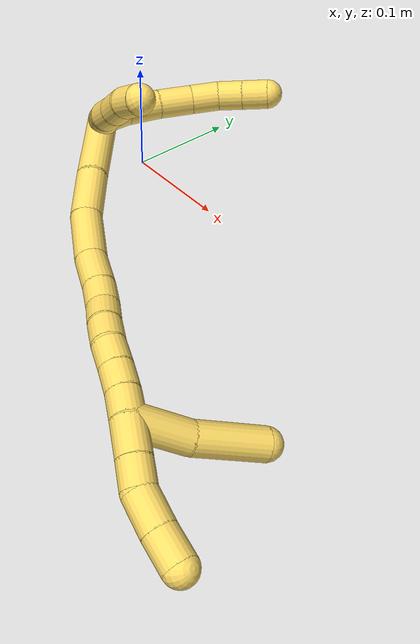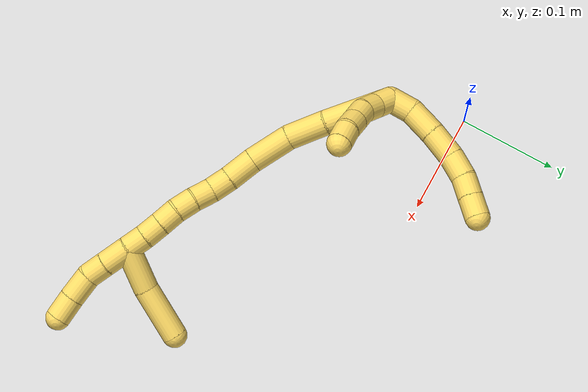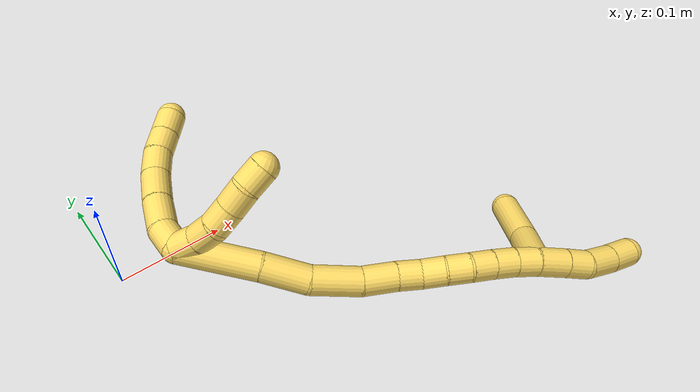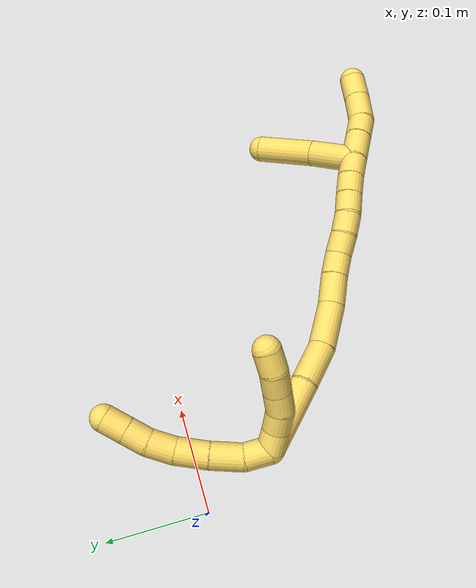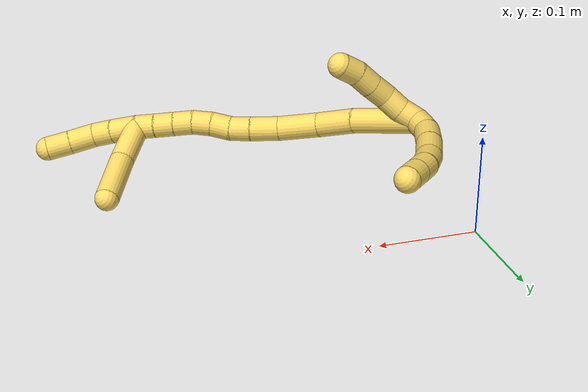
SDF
<sdf version="1.7">
 <world name="default">
  <model name="5">
   <static>0</static>
   <link name="5">
    <collision name="collision-cylinder-e_1_2_8">
     <pose>-0.002178 0.011184 0.002927 -1.31479 -0.186199 0.143902</pose>
     <geometry><cylinder><radius>0.0125</radius><length>0.023528</length></cylinder></geometry>
     <surface>
      <friction><ode><mu>1.16</mu><mu2>1.16</mu2><slip1>0</slip1><slip2>0</slip2></ode></friction>
      <contact><ode><kp>1e+06</kp><kd>1</kd><max_vel>0</max_vel><min_depth>0.001</min_depth></ode></contact>
     </surface>
    </collision>
    <visual name="visual-cylinder-e_1_2_8">
     <pose>-0.002178 0.011184 0.002927 -1.31479 -0.186199 0.143902</pose>
     <geometry><cylinder><radius>0.0125</radius><length>0.023528</length></cylinder></geometry>
     <material><ambient>1 0.858824 0.4 1</ambient></material>
    </visual>
    <collision name="collision-cylinder-e_2_8_9">
     <pose>-0.004503 0.035185 0.013431 -1.03695 -0.009895 0.005645</pose>
     <geometry><cylinder><radius>0.0125</radius><length>0.029778</length></cylinder></geometry>
     <surface>
      <friction><ode><mu>1.16</mu><mu2>1.16</mu2><slip1>0</slip1><slip2>0</slip2></ode></friction>
      <contact><ode><kp>1e+06</kp><kd>1</kd><max_vel>0</max_vel><min_depth>0.001</min_depth></ode></contact>
     </surface>
    </collision>
    <visual name="visual-cylinder-e_2_8_9">
     <pose>-0.004503 0.035185 0.013431 -1.03695 -0.009895 0.005645</pose>
     <geometry><cylinder><radius>0.0125</radius><length>0.029778</length></cylinder></geometry>
     <material><ambient>1 0.858824 0.4 1</ambient></material>
    </visual>
    <collision name="collision-cylinder-e_3_9_10">
     <pose>-0.003759 0.060342 0.029171 -0.986274 0.060182 -0.03235</pose>
     <geometry><cylinder><radius>0.0125</radius><length>0.029647</length></cylinder></geometry>
     <surface>
      <friction><ode><mu>1.16</mu><mu2>1.16</mu2><slip1>0</slip1><slip2>0</slip2></ode></friction>
      <contact><ode><kp>1e+06</kp><kd>1</kd><max_vel>0</max_vel><min_depth>0.001</min_depth></ode></contact>
     </surface>
    </collision>
    <visual name="visual-cylinder-e_3_9_10">
     <pose>-0.003759 0.060342 0.029171 -0.986274 0.060182 -0.03235</pose>
     <geometry><cylinder><radius>0.0125</radius><length>0.029647</length></cylinder></geometry>
     <material><ambient>1 0.858824 0.4 1</ambient></material>
    </visual>
    <collision name="collision-cylinder-e_4_10_11">
     <pose>-0.001675 0.081386 0.0456 -0.81141 0.098975 -0.042541</pose>
     <geometry><cylinder><radius>0.0125</radius><length>0.024123</length></cylinder></geometry>
     <surface>
      <friction><ode><mu>1.16</mu><mu2>1.16</mu2><slip1>0</slip1><slip2>0</slip2></ode></friction>
      <contact><ode><kp>1e+06</kp><kd>1</kd><max_vel>0</max_vel><min_depth>0.001</min_depth></ode></contact>
     </surface>
    </collision>
    <visual name="visual-cylinder-e_4_10_11">
     <pose>-0.001675 0.081386 0.0456 -0.81141 0.098975 -0.042541</pose>
     <geometry><cylinder><radius>0.0125</radius><length>0.024123</length></cylinder></geometry>
     <material><ambient>1 0.858824 0.4 1</ambient></material>
    </visual>
    <collision name="collision-cylinder-e_5_11_12">
     <pose>0.001913 0.096352 0.061997 -0.655997 0.229386 -0.078362</pose>
     <geometry><cylinder><radius>0.0125</radius><length>0.021081</length></cylinder></geometry>
     <surface>
      <friction><ode><mu>1.16</mu><mu2>1.16</mu2><slip1>0</slip1><slip2>0</slip2></ode></friction>
      <contact><ode><kp>1e+06</kp><kd>1</kd><max_vel>0</max_vel><min_depth>0.001</min_depth></ode></contact>
     </surface>
    </collision>
    <visual name="visual-cylinder-e_5_11_12">
     <pose>0.001913 0.096352 0.061997 -0.655997 0.229386 -0.078362</pose>
     <geometry><cylinder><radius>0.0125</radius><length>0.021081</length></cylinder></geometry>
     <material><ambient>1 0.858824 0.4 1</ambient></material>
    </visual>
    <collision name="collision-cylinder-e_6_12_6">
     <pose>0.006787 0.109113 0.07855 -0.657517 0.228806 -0.078357</pose>
     <geometry><cylinder><radius>0.0125</radius><length>0.021843</length></cylinder></geometry>
     <surface>
      <friction><ode><mu>1.16</mu><mu2>1.16</mu2><slip1>0</slip1><slip2>0</slip2></ode></friction>
      <contact><ode><kp>1e+06</kp><kd>1</kd><max_vel>0</max_vel><min_depth>0.001</min_depth></ode></contact>
     </surface>
    </collision>
    <visual name="visual-cylinder-e_6_12_6">
     <pose>0.006787 0.109113 0.07855 -0.657517 0.228806 -0.078357</pose>
     <geometry><cylinder><radius>0.0125</radius><length>0.021843</length></cylinder></geometry>
     <material><ambient>1 0.858824 0.4 1</ambient></material>
    </visual>
    <collision name="collision-cylinder-e_1_2_13">
     <pose>0.002527 -0.006354 0.007297 0.716481 0.255423 0.096079</pose>
     <geometry><cylinder><radius>0.0125</radius><length>0.02</length></cylinder></geometry>
     <surface>
      <friction><ode><mu>1.16</mu><mu2>1.16</mu2><slip1>0</slip1><slip2>0</slip2></ode></friction>
      <contact><ode><kp>1e+06</kp><kd>1</kd><max_vel>0</max_vel><min_depth>0.001</min_depth></ode></contact>
     </surface>
    </collision>
    <visual name="visual-cylinder-e_1_2_13">
     <pose>0.002527 -0.006354 0.007297 0.716481 0.255423 0.096079</pose>
     <geometry><cylinder><radius>0.0125</radius><length>0.02</length></cylinder></geometry>
     <material><ambient>1 0.858824 0.4 1</ambient></material>
    </visual>
    <collision name="collision-cylinder-e_2_13_14">
     <pose>0.005523 -0.018657 0.022618 0.637875 0.047003 0.015523</pose>
     <geometry><cylinder><radius>0.0125</radius><length>0.02</length></cylinder></geometry>
     <surface>
      <friction><ode><mu>1.16</mu><mu2>1.16</mu2><slip1>0</slip1><slip2>0</slip2></ode></friction>
      <contact><ode><kp>1e+06</kp><kd>1</kd><max_vel>0</max_vel><min_depth>0.001</min_depth></ode></contact>
     </surface>
    </collision>
    <visual name="visual-cylinder-e_2_13_14">
     <pose>0.005523 -0.018657 0.022618 0.637875 0.047003 0.015523</pose>
     <geometry><cylinder><radius>0.0125</radius><length>0.02</length></cylinder></geometry>
     <material><ambient>1 0.858824 0.4 1</ambient></material>
    </visual>
    <collision name="collision-cylinder-e_3_14_15">
     <pose>0.00643 -0.027725 0.040133 0.317596 0.043752 0.007008</pose>
     <geometry><cylinder><radius>0.0125</radius><length>0.02</length></cylinder></geometry>
     <surface>
      <friction><ode><mu>1.16</mu><mu2>1.16</mu2><slip1>0</slip1><slip2>0</slip2></ode></friction>
      <contact><ode><kp>1e+06</kp><kd>1</kd><max_vel>0</max_vel><min_depth>0.001</min_depth></ode></contact>
     </surface>
    </collision>
    <visual name="visual-cylinder-e_3_14_15">
     <pose>0.00643 -0.027725 0.040133 0.317596 0.043752 0.007008</pose>
     <geometry><cylinder><radius>0.0125</radius><length>0.02</length></cylinder></geometry>
     <material><ambient>1 0.858824 0.4 1</ambient></material>
    </visual>
    <collision name="collision-cylinder-e_4_15_16">
     <pose>0.0068 -0.034071 0.059089 0.328535 -0.006783 -0.001124</pose>
     <geometry><cylinder><radius>0.0125</radius><length>0.02</length></cylinder></geometry>
     <surface>
      <friction><ode><mu>1.16</mu><mu2>1.16</mu2><slip1>0</slip1><slip2>0</slip2></ode></friction>
      <contact><ode><kp>1e+06</kp><kd>1</kd><max_vel>0</max_vel><min_depth>0.001</min_depth></ode></contact>
     </surface>
    </collision>
    <visual name="visual-cylinder-e_4_15_16">
     <pose>0.0068 -0.034071 0.059089 0.328535 -0.006783 -0.001124</pose>
     <geometry><cylinder><radius>0.0125</radius><length>0.02</length></cylinder></geometry>
     <material><ambient>1 0.858824 0.4 1</ambient></material>
    </visual>
    <collision name="collision-cylinder-e_5_16_5">
     <pose>0.008603 -0.039015 0.078226 0.175691 0.188215 0.016625</pose>
     <geometry><cylinder><radius>0.0125</radius><length>0.02</length></cylinder></geometry>
     <surface>
      <friction><ode><mu>1.16</mu><mu2>1.16</mu2><slip1>0</slip1><slip2>0</slip2></ode></friction>
      <contact><ode><kp>1e+06</kp><kd>1</kd><max_vel>0</max_vel><min_depth>0.001</min_depth></ode></contact>
     </surface>
    </collision>
    <visual name="visual-cylinder-e_5_16_5">
     <pose>0.008603 -0.039015 0.078226 0.175691 0.188215 0.016625</pose>
     <geometry><cylinder><radius>0.0125</radius><length>0.02</length></cylinder></geometry>
     <material><ambient>1 0.858824 0.4 1</ambient></material>
    </visual>
    <collision name="collision-cylinder-e_1_2_17">
     <pose>0.025394 -0.020481 0.00793 1.20139 0.857719 0.607194</pose>
     <geometry><cylinder><radius>0.0125</radius><length>0.067147</length></cylinder></geometry>
     <surface>
      <friction><ode><mu>1.16</mu><mu2>1.16</mu2><slip1>0</slip1><slip2>0</slip2></ode></friction>
      <contact><ode><kp>1e+06</kp><kd>1</kd><max_vel>0</max_vel><min_depth>0.001</min_depth></ode></contact>
     </surface>
    </collision>
    <visual name="visual-cylinder-e_1_2_17">
     <pose>0.025394 -0.020481 0.00793 1.20139 0.857719 0.607194</pose>
     <geometry><cylinder><radius>0.0125</radius><length>0.067147</length></cylinder></geometry>
     <material><ambient>1 0.858824 0.4 1</ambient></material>
    </visual>
    <collision name="collision-cylinder-e_2_17_18">
     <pose>0.0671 -0.051897 0.01924 1.27103 0.958986 0.732448</pose>
     <geometry><cylinder><radius>0.0125</radius><length>0.039855</length></cylinder></geometry>
     <surface>
      <friction><ode><mu>1.16</mu><mu2>1.16</mu2><slip1>0</slip1><slip2>0</slip2></ode></friction>
      <contact><ode><kp>1e+06</kp><kd>1</kd><max_vel>0</max_vel><min_depth>0.001</min_depth></ode></contact>
     </surface>
    </collision>
    <visual name="visual-cylinder-e_2_17_18">
     <pose>0.0671 -0.051897 0.01924 1.27103 0.958986 0.732448</pose>
     <geometry><cylinder><radius>0.0125</radius><length>0.039855</length></cylinder></geometry>
     <material><ambient>1 0.858824 0.4 1</ambient></material>
    </visual>
    <collision name="collision-cylinder-e_3_18_19">
     <pose>0.100644 -0.072273 0.030697 0.863043 0.946067 0.462874</pose>
     <geometry><cylinder><radius>0.0125</radius><length>0.042486</length></cylinder></geometry>
     <surface>
      <friction><ode><mu>1.16</mu><mu2>1.16</mu2><slip1>0</slip1><slip2>0</slip2></ode></friction>
      <contact><ode><kp>1e+06</kp><kd>1</kd><max_vel>0</max_vel><min_depth>0.001</min_depth></ode></contact>
     </surface>
    </collision>
    <visual name="visual-cylinder-e_3_18_19">
     <pose>0.100644 -0.072273 0.030697 0.863043 0.946067 0.462874</pose>
     <geometry><cylinder><radius>0.0125</radius><length>0.042486</length></cylinder></geometry>
     <material><ambient>1 0.858824 0.4 1</ambient></material>
    </visual>
    <collision name="collision-cylinder-e_4_19_20">
     <pose>0.128742 -0.087572 0.046624 0.641188 0.837298 0.29337</pose>
     <geometry><cylinder><radius>0.0125</radius><length>0.029261</length></cylinder></geometry>
     <surface>
      <friction><ode><mu>1.16</mu><mu2>1.16</mu2><slip1>0</slip1><slip2>0</slip2></ode></friction>
      <contact><ode><kp>1e+06</kp><kd>1</kd><max_vel>0</max_vel><min_depth>0.001</min_depth></ode></contact>
     </surface>
    </collision>
    <visual name="visual-cylinder-e_4_19_20">
     <pose>0.128742 -0.087572 0.046624 0.641188 0.837298 0.29337</pose>
     <geometry><cylinder><radius>0.0125</radius><length>0.029261</length></cylinder></geometry>
     <material><ambient>1 0.858824 0.4 1</ambient></material>
    </visual>
    <collision name="collision-cylinder-e_5_20_21">
     <pose>0.147283 -0.098352 0.059701 0.755265 0.818575 0.340801</pose>
     <geometry><cylinder><radius>0.0125</radius><length>0.021016</length></cylinder></geometry>
     <surface>
      <friction><ode><mu>1.16</mu><mu2>1.16</mu2><slip1>0</slip1><slip2>0</slip2></ode></friction>
      <contact><ode><kp>1e+06</kp><kd>1</kd><max_vel>0</max_vel><min_depth>0.001</min_depth></ode></contact>
     </surface>
    </collision>
    <visual name="visual-cylinder-e_5_20_21">
     <pose>0.147283 -0.098352 0.059701 0.755265 0.818575 0.340801</pose>
     <geometry><cylinder><radius>0.0125</radius><length>0.021016</length></cylinder></geometry>
     <material><ambient>1 0.858824 0.4 1</ambient></material>
    </visual>
    <collision name="collision-cylinder-e_6_21_22">
     <pose>0.160754 -0.109183 0.070702 0.796979 0.611997 0.264462</pose>
     <geometry><cylinder><radius>0.0125</radius><length>0.020186</length></cylinder></geometry>
     <surface>
      <friction><ode><mu>1.16</mu><mu2>1.16</mu2><slip1>0</slip1><slip2>0</slip2></ode></friction>
      <contact><ode><kp>1e+06</kp><kd>1</kd><max_vel>0</max_vel><min_depth>0.001</min_depth></ode></contact>
     </surface>
    </collision>
    <visual name="visual-cylinder-e_6_21_22">
     <pose>0.160754 -0.109183 0.070702 0.796979 0.611997 0.264462</pose>
     <geometry><cylinder><radius>0.0125</radius><length>0.020186</length></cylinder></geometry>
     <material><ambient>1 0.858824 0.4 1</ambient></material>
    </visual>
    <collision name="collision-cylinder-e_7_22_23">
     <pose>0.173325 -0.12007 0.081929 0.739928 0.74219 0.299561</pose>
     <geometry><cylinder><radius>0.0125</radius><length>0.02004</length></cylinder></geometry>
     <surface>
      <friction><ode><mu>1.16</mu><mu2>1.16</mu2><slip1>0</slip1><slip2>0</slip2></ode></friction>
      <contact><ode><kp>1e+06</kp><kd>1</kd><max_vel>0</max_vel><min_depth>0.001</min_depth></ode></contact>
     </surface>
    </collision>
    <visual name="visual-cylinder-e_7_22_23">
     <pose>0.173325 -0.12007 0.081929 0.739928 0.74219 0.299561</pose>
     <geometry><cylinder><radius>0.0125</radius><length>0.02004</length></cylinder></geometry>
     <material><ambient>1 0.858824 0.4 1</ambient></material>
    </visual>
    <collision name="collision-cylinder-e_8_23_24">
     <pose>0.187929 -0.128544 0.092531 0.596283 0.899369 0.294501</pose>
     <geometry><cylinder><radius>0.0125</radius><length>0.020006</length></cylinder></geometry>
     <surface>
      <friction><ode><mu>1.16</mu><mu2>1.16</mu2><slip1>0</slip1><slip2>0</slip2></ode></friction>
      <contact><ode><kp>1e+06</kp><kd>1</kd><max_vel>0</max_vel><min_depth>0.001</min_depth></ode></contact>
     </surface>
    </collision>
    <visual name="visual-cylinder-e_8_23_24">
     <pose>0.187929 -0.128544 0.092531 0.596283 0.899369 0.294501</pose>
     <geometry><cylinder><radius>0.0125</radius><length>0.020006</length></cylinder></geometry>
     <material><ambient>1 0.858824 0.4 1</ambient></material>
    </visual>
    <collision name="collision-cylinder-e_9_24_25">
     <pose>0.203682 -0.135714 0.102555 0.646167 0.914168 0.32641</pose>
     <geometry><cylinder><radius>0.0125</radius><length>0.020002</length></cylinder></geometry>
     <surface>
      <friction><ode><mu>1.16</mu><mu2>1.16</mu2><slip1>0</slip1><slip2>0</slip2></ode></friction>
      <contact><ode><kp>1e+06</kp><kd>1</kd><max_vel>0</max_vel><min_depth>0.001</min_depth></ode></contact>
     </surface>
    </collision>
    <visual name="visual-cylinder-e_9_24_25">
     <pose>0.203682 -0.135714 0.102555 0.646167 0.914168 0.32641</pose>
     <geometry><cylinder><radius>0.0125</radius><length>0.020002</length></cylinder></geometry>
     <material><ambient>1 0.858824 0.4 1</ambient></material>
    </visual>
    <collision name="collision-cylinder-e_10_25_1">
     <pose>0.219564 -0.143633 0.111747 0.776601 0.920631 0.400237</pose>
     <geometry><cylinder><radius>0.0125</radius><length>0.020001</length></cylinder></geometry>
     <surface>
      <friction><ode><mu>1.16</mu><mu2>1.16</mu2><slip1>0</slip1><slip2>0</slip2></ode></friction>
      <contact><ode><kp>1e+06</kp><kd>1</kd><max_vel>0</max_vel><min_depth>0.001</min_depth></ode></contact>
     </surface>
    </collision>
    <visual name="visual-cylinder-e_10_25_1">
     <pose>0.219564 -0.143633 0.111747 0.776601 0.920631 0.400237</pose>
     <geometry><cylinder><radius>0.0125</radius><length>0.020001</length></cylinder></geometry>
     <material><ambient>1 0.858824 0.4 1</ambient></material>
    </visual>
    <collision name="collision-cylinder-e_1_1_26">
     <pose>0.239214 -0.129931 0.123062 -1.199 0.545529 -0.377786</pose>
     <geometry><cylinder><radius>0.0125</radius><length>0.045062</length></cylinder></geometry>
     <surface>
      <friction><ode><mu>1.16</mu><mu2>1.16</mu2><slip1>0</slip1><slip2>0</slip2></ode></friction>
      <contact><ode><kp>1e+06</kp><kd>1</kd><max_vel>0</max_vel><min_depth>0.001</min_depth></ode></contact>
     </surface>
    </collision>
    <visual name="visual-cylinder-e_1_1_26">
     <pose>0.239214 -0.129931 0.123062 -1.199 0.545529 -0.377786</pose>
     <geometry><cylinder><radius>0.0125</radius><length>0.045062</length></cylinder></geometry>
     <material><ambient>1 0.858824 0.4 1</ambient></material>
    </visual>
    <collision name="collision-cylinder-e_2_26_4">
     <pose>0.260524 -0.088349 0.140222 -1.16476 0.357767 -0.237047</pose>
     <geometry><cylinder><radius>0.0125</radius><length>0.054938</length></cylinder></geometry>
     <surface>
      <friction><ode><mu>1.16</mu><mu2>1.16</mu2><slip1>0</slip1><slip2>0</slip2></ode></friction>
      <contact><ode><kp>1e+06</kp><kd>1</kd><max_vel>0</max_vel><min_depth>0.001</min_depth></ode></contact>
     </surface>
    </collision>
    <visual name="visual-cylinder-e_2_26_4">
     <pose>0.260524 -0.088349 0.140222 -1.16476 0.357767 -0.237047</pose>
     <geometry><cylinder><radius>0.0125</radius><length>0.054938</length></cylinder></geometry>
     <material><ambient>1 0.858824 0.4 1</ambient></material>
    </visual>
    <collision name="collision-cylinder-e_1_1_27">
     <pose>0.238931 -0.153183 0.120838 0.838302 1.01164 0.483905</pose>
     <geometry><cylinder><radius>0.0125</radius><length>0.026913</length></cylinder></geometry>
     <surface>
      <friction><ode><mu>1.16</mu><mu2>1.16</mu2><slip1>0</slip1><slip2>0</slip2></ode></friction>
      <contact><ode><kp>1e+06</kp><kd>1</kd><max_vel>0</max_vel><min_depth>0.001</min_depth></ode></contact>
     </surface>
    </collision>
    <visual name="visual-cylinder-e_1_1_27">
     <pose>0.238931 -0.153183 0.120838 0.838302 1.01164 0.483905</pose>
     <geometry><cylinder><radius>0.0125</radius><length>0.026913</length></cylinder></geometry>
     <material><ambient>1 0.858824 0.4 1</ambient></material>
    </visual>
    <collision name="collision-cylinder-e_2_27_28">
     <pose>0.259545 -0.162566 0.129108 0.861842 1.0428 0.516377</pose>
     <geometry><cylinder><radius>0.0125</radius><length>0.021318</length></cylinder></geometry>
     <surface>
      <friction><ode><mu>1.16</mu><mu2>1.16</mu2><slip1>0</slip1><slip2>0</slip2></ode></friction>
      <contact><ode><kp>1e+06</kp><kd>1</kd><max_vel>0</max_vel><min_depth>0.001</min_depth></ode></contact>
     </surface>
    </collision>
    <visual name="visual-cylinder-e_2_27_28">
     <pose>0.259545 -0.162566 0.129108 0.861842 1.0428 0.516377</pose>
     <geometry><cylinder><radius>0.0125</radius><length>0.021318</length></cylinder></geometry>
     <material><ambient>1 0.858824 0.4 1</ambient></material>
    </visual>
    <collision name="collision-cylinder-e_3_28_29">
     <pose>0.280435 -0.168381 0.139393 0.250618 1.03043 0.142412</pose>
     <geometry><cylinder><radius>0.0125</radius><length>0.027246</length></cylinder></geometry>
     <surface>
      <friction><ode><mu>1.16</mu><mu2>1.16</mu2><slip1>0</slip1><slip2>0</slip2></ode></friction>
      <contact><ode><kp>1e+06</kp><kd>1</kd><max_vel>0</max_vel><min_depth>0.001</min_depth></ode></contact>
     </surface>
    </collision>
    <visual name="visual-cylinder-e_3_28_29">
     <pose>0.280435 -0.168381 0.139393 0.250618 1.03043 0.142412</pose>
     <geometry><cylinder><radius>0.0125</radius><length>0.027246</length></cylinder></geometry>
     <material><ambient>1 0.858824 0.4 1</ambient></material>
    </visual>
    <collision name="collision-cylinder-e_4_29_3">
     <pose>0.302246 -0.171329 0.152985 0.17613 0.972175 0.093236</pose>
     <geometry><cylinder><radius>0.0125</radius><length>0.024524</length></cylinder></geometry>
     <surface>
      <friction><ode><mu>1.16</mu><mu2>1.16</mu2><slip1>0</slip1><slip2>0</slip2></ode></friction>
      <contact><ode><kp>1e+06</kp><kd>1</kd><max_vel>0</max_vel><min_depth>0.001</min_depth></ode></contact>
     </surface>
    </collision>
    <visual name="visual-cylinder-e_4_29_3">
     <pose>0.302246 -0.171329 0.152985 0.17613 0.972175 0.093236</pose>
     <geometry><cylinder><radius>0.0125</radius><length>0.024524</length></cylinder></geometry>
     <material><ambient>1 0.858824 0.4 1</ambient></material>
    </visual>
    <collision name="collision-sphere-3">
     <pose>0.312376 -0.17254 0.159788 0 -0 0</pose>
     <geometry><sphere><radius>0.0125</radius></sphere></geometry>
     <surface>
      <friction><ode><mu>1.16</mu><mu2>1.16</mu2><slip1>0</slip1><slip2>0</slip2></ode></friction>
      <contact><ode><kp>1e+06</kp><kd>1</kd><max_vel>0</max_vel><min_depth>0.001</min_depth></ode></contact>
     </surface>
    </collision>
    <visual name="visual-sphere-3">
     <pose>0.312376 -0.17254 0.159788 0 -0 0</pose>
     <geometry><sphere><radius>0.0125</radius></sphere></geometry>
     <material><ambient>1 0.858824 0.4 1</ambient></material>
    </visual>
    <collision name="collision-sphere-29">
     <pose>0.292116 -0.170119 0.146183 0 -0 0</pose>
     <geometry><sphere><radius>0.0125</radius></sphere></geometry>
     <surface>
      <friction><ode><mu>1.16</mu><mu2>1.16</mu2><slip1>0</slip1><slip2>0</slip2></ode></friction>
      <contact><ode><kp>1e+06</kp><kd>1</kd><max_vel>0</max_vel><min_depth>0.001</min_depth></ode></contact>
     </surface>
    </collision>
    <visual name="visual-sphere-29">
     <pose>0.292116 -0.170119 0.146183 0 -0 0</pose>
     <geometry><sphere><radius>0.0125</radius></sphere></geometry>
     <material><ambient>1 0.858824 0.4 1</ambient></material>
    </visual>
    <collision name="collision-sphere-28">
     <pose>0.268753 -0.166642 0.132604 0 -0 0</pose>
     <geometry><sphere><radius>0.0125</radius></sphere></geometry>
     <surface>
      <friction><ode><mu>1.16</mu><mu2>1.16</mu2><slip1>0</slip1><slip2>0</slip2></ode></friction>
      <contact><ode><kp>1e+06</kp><kd>1</kd><max_vel>0</max_vel><min_depth>0.001</min_depth></ode></contact>
     </surface>
    </collision>
    <visual name="visual-sphere-28">
     <pose>0.268753 -0.166642 0.132604 0 -0 0</pose>
     <geometry><sphere><radius>0.0125</radius></sphere></geometry>
     <material><ambient>1 0.858824 0.4 1</ambient></material>
    </visual>
    <collision name="collision-sphere-27">
     <pose>0.250338 -0.15849 0.125612 0 -0 0</pose>
     <geometry><sphere><radius>0.0125</radius></sphere></geometry>
     <surface>
      <friction><ode><mu>1.16</mu><mu2>1.16</mu2><slip1>0</slip1><slip2>0</slip2></ode></friction>
      <contact><ode><kp>1e+06</kp><kd>1</kd><max_vel>0</max_vel><min_depth>0.001</min_depth></ode></contact>
     </surface>
    </collision>
    <visual name="visual-sphere-27">
     <pose>0.250338 -0.15849 0.125612 0 -0 0</pose>
     <geometry><sphere><radius>0.0125</radius></sphere></geometry>
     <material><ambient>1 0.858824 0.4 1</ambient></material>
    </visual>
    <collision name="collision-sphere-4">
     <pose>0.270143 -0.064711 0.150384 0 -0 0</pose>
     <geometry><sphere><radius>0.0125</radius></sphere></geometry>
     <surface>
      <friction><ode><mu>1.16</mu><mu2>1.16</mu2><slip1>0</slip1><slip2>0</slip2></ode></friction>
      <contact><ode><kp>1e+06</kp><kd>1</kd><max_vel>0</max_vel><min_depth>0.001</min_depth></ode></contact>
     </surface>
    </collision>
    <visual name="visual-sphere-4">
     <pose>0.270143 -0.064711 0.150384 0 -0 0</pose>
     <geometry><sphere><radius>0.0125</radius></sphere></geometry>
     <material><ambient>1 0.858824 0.4 1</ambient></material>
    </visual>
    <collision name="collision-sphere-26">
     <pose>0.250905 -0.111986 0.130059 0 -0 0</pose>
     <geometry><sphere><radius>0.0125</radius></sphere></geometry>
     <surface>
      <friction><ode><mu>1.16</mu><mu2>1.16</mu2><slip1>0</slip1><slip2>0</slip2></ode></friction>
      <contact><ode><kp>1e+06</kp><kd>1</kd><max_vel>0</max_vel><min_depth>0.001</min_depth></ode></contact>
     </surface>
    </collision>
    <visual name="visual-sphere-26">
     <pose>0.250905 -0.111986 0.130059 0 -0 0</pose>
     <geometry><sphere><radius>0.0125</radius></sphere></geometry>
     <material><ambient>1 0.858824 0.4 1</ambient></material>
    </visual>
    <collision name="collision-sphere-1">
     <pose>0.227524 -0.147876 0.116065 0 -0 0</pose>
     <geometry><sphere><radius>0.0125</radius></sphere></geometry>
     <surface>
      <friction><ode><mu>1.16</mu><mu2>1.16</mu2><slip1>0</slip1><slip2>0</slip2></ode></friction>
      <contact><ode><kp>1e+06</kp><kd>1</kd><max_vel>0</max_vel><min_depth>0.001</min_depth></ode></contact>
     </surface>
    </collision>
    <visual name="visual-sphere-1">
     <pose>0.227524 -0.147876 0.116065 0 -0 0</pose>
     <geometry><sphere><radius>0.0125</radius></sphere></geometry>
     <material><ambient>1 0.858824 0.4 1</ambient></material>
    </visual>
    <collision name="collision-sphere-25">
     <pose>0.211603 -0.13939 0.107429 0 -0 0</pose>
     <geometry><sphere><radius>0.0125</radius></sphere></geometry>
     <surface>
      <friction><ode><mu>1.16</mu><mu2>1.16</mu2><slip1>0</slip1><slip2>0</slip2></ode></friction>
      <contact><ode><kp>1e+06</kp><kd>1</kd><max_vel>0</max_vel><min_depth>0.001</min_depth></ode></contact>
     </surface>
    </collision>
    <visual name="visual-sphere-25">
     <pose>0.211603 -0.13939 0.107429 0 -0 0</pose>
     <geometry><sphere><radius>0.0125</radius></sphere></geometry>
     <material><ambient>1 0.858824 0.4 1</ambient></material>
    </visual>
    <collision name="collision-sphere-24">
     <pose>0.195761 -0.132038 0.09768 0 -0 0</pose>
     <geometry><sphere><radius>0.0125</radius></sphere></geometry>
     <surface>
      <friction><ode><mu>1.16</mu><mu2>1.16</mu2><slip1>0</slip1><slip2>0</slip2></ode></friction>
      <contact><ode><kp>1e+06</kp><kd>1</kd><max_vel>0</max_vel><min_depth>0.001</min_depth></ode></contact>
     </surface>
    </collision>
    <visual name="visual-sphere-24">
     <pose>0.195761 -0.132038 0.09768 0 -0 0</pose>
     <geometry><sphere><radius>0.0125</radius></sphere></geometry>
     <material><ambient>1 0.858824 0.4 1</ambient></material>
    </visual>
    <collision name="collision-sphere-23">
     <pose>0.180098 -0.125049 0.087382 0 -0 0</pose>
     <geometry><sphere><radius>0.0125</radius></sphere></geometry>
     <surface>
      <friction><ode><mu>1.16</mu><mu2>1.16</mu2><slip1>0</slip1><slip2>0</slip2></ode></friction>
      <contact><ode><kp>1e+06</kp><kd>1</kd><max_vel>0</max_vel><min_depth>0.001</min_depth></ode></contact>
     </surface>
    </collision>
    <visual name="visual-sphere-23">
     <pose>0.180098 -0.125049 0.087382 0 -0 0</pose>
     <geometry><sphere><radius>0.0125</radius></sphere></geometry>
     <material><ambient>1 0.858824 0.4 1</ambient></material>
    </visual>
    <collision name="collision-sphere-22">
     <pose>0.166553 -0.115092 0.076475 0 -0 0</pose>
     <geometry><sphere><radius>0.0125</radius></sphere></geometry>
     <surface>
      <friction><ode><mu>1.16</mu><mu2>1.16</mu2><slip1>0</slip1><slip2>0</slip2></ode></friction>
      <contact><ode><kp>1e+06</kp><kd>1</kd><max_vel>0</max_vel><min_depth>0.001</min_depth></ode></contact>
     </surface>
    </collision>
    <visual name="visual-sphere-22">
     <pose>0.166553 -0.115092 0.076475 0 -0 0</pose>
     <geometry><sphere><radius>0.0125</radius></sphere></geometry>
     <material><ambient>1 0.858824 0.4 1</ambient></material>
    </visual>
    <collision name="collision-sphere-21">
     <pose>0.154956 -0.103274 0.064928 0 -0 0</pose>
     <geometry><sphere><radius>0.0125</radius></sphere></geometry>
     <surface>
      <friction><ode><mu>1.16</mu><mu2>1.16</mu2><slip1>0</slip1><slip2>0</slip2></ode></friction>
      <contact><ode><kp>1e+06</kp><kd>1</kd><max_vel>0</max_vel><min_depth>0.001</min_depth></ode></contact>
     </surface>
    </collision>
    <visual name="visual-sphere-21">
     <pose>0.154956 -0.103274 0.064928 0 -0 0</pose>
     <geometry><sphere><radius>0.0125</radius></sphere></geometry>
     <material><ambient>1 0.858824 0.4 1</ambient></material>
    </visual>
    <collision name="collision-sphere-12">
     <pose>0.00431 0.102613 0.070131 0 -0 0</pose>
     <geometry><sphere><radius>0.0125</radius></sphere></geometry>
     <surface>
      <friction><ode><mu>1.16</mu><mu2>1.16</mu2><slip1>0</slip1><slip2>0</slip2></ode></friction>
      <contact><ode><kp>1e+06</kp><kd>1</kd><max_vel>0</max_vel><min_depth>0.001</min_depth></ode></contact>
     </surface>
    </collision>
    <visual name="visual-sphere-12">
     <pose>0.00431 0.102613 0.070131 0 -0 0</pose>
     <geometry><sphere><radius>0.0125</radius></sphere></geometry>
     <material><ambient>1 0.858824 0.4 1</ambient></material>
    </visual>
    <collision name="collision-sphere-11">
     <pose>-0.000484 0.090091 0.053863 0 -0 0</pose>
     <geometry><sphere><radius>0.0125</radius></sphere></geometry>
     <surface>
      <friction><ode><mu>1.16</mu><mu2>1.16</mu2><slip1>0</slip1><slip2>0</slip2></ode></friction>
      <contact><ode><kp>1e+06</kp><kd>1</kd><max_vel>0</max_vel><min_depth>0.001</min_depth></ode></contact>
     </surface>
    </collision>
    <visual name="visual-sphere-11">
     <pose>-0.000484 0.090091 0.053863 0 -0 0</pose>
     <geometry><sphere><radius>0.0125</radius></sphere></geometry>
     <material><ambient>1 0.858824 0.4 1</ambient></material>
    </visual>
    <collision name="collision-sphere-10">
     <pose>-0.002867 0.072682 0.037336 0 -0 0</pose>
     <geometry><sphere><radius>0.0125</radius></sphere></geometry>
     <surface>
      <friction><ode><mu>1.16</mu><mu2>1.16</mu2><slip1>0</slip1><slip2>0</slip2></ode></friction>
      <contact><ode><kp>1e+06</kp><kd>1</kd><max_vel>0</max_vel><min_depth>0.001</min_depth></ode></contact>
     </surface>
    </collision>
    <visual name="visual-sphere-10">
     <pose>-0.002867 0.072682 0.037336 0 -0 0</pose>
     <geometry><sphere><radius>0.0125</radius></sphere></geometry>
     <material><ambient>1 0.858824 0.4 1</ambient></material>
    </visual>
    <collision name="collision-sphere-9">
     <pose>-0.00465 0.048002 0.021007 0 -0 0</pose>
     <geometry><sphere><radius>0.0125</radius></sphere></geometry>
     <surface>
      <friction><ode><mu>1.16</mu><mu2>1.16</mu2><slip1>0</slip1><slip2>0</slip2></ode></friction>
      <contact><ode><kp>1e+06</kp><kd>1</kd><max_vel>0</max_vel><min_depth>0.001</min_depth></ode></contact>
     </surface>
    </collision>
    <visual name="visual-sphere-9">
     <pose>-0.00465 0.048002 0.021007 0 -0 0</pose>
     <geometry><sphere><radius>0.0125</radius></sphere></geometry>
     <material><ambient>1 0.858824 0.4 1</ambient></material>
    </visual>
    <collision name="collision-sphere-2">
     <geometry><sphere><radius>0.0125</radius></sphere></geometry>
     <surface>
      <friction><ode><mu>1.16</mu><mu2>1.16</mu2><slip1>0</slip1><slip2>0</slip2></ode></friction>
      <contact><ode><kp>1e+06</kp><kd>1</kd><max_vel>0</max_vel><min_depth>0.001</min_depth></ode></contact>
     </surface>
    </collision>
    <visual name="visual-sphere-2">
     <geometry><sphere><radius>0.0125</radius></sphere></geometry>
     <material><ambient>1 0.858824 0.4 1</ambient></material>
    </visual>
    <collision name="collision-sphere-19">
     <pose>0.117874 -0.081713 0.038775 0 -0 0</pose>
     <geometry><sphere><radius>0.0125</radius></sphere></geometry>
     <surface>
      <friction><ode><mu>1.16</mu><mu2>1.16</mu2><slip1>0</slip1><slip2>0</slip2></ode></friction>
      <contact><ode><kp>1e+06</kp><kd>1</kd><max_vel>0</max_vel><min_depth>0.001</min_depth></ode></contact>
     </surface>
    </collision>
    <visual name="visual-sphere-19">
     <pose>0.117874 -0.081713 0.038775 0 -0 0</pose>
     <geometry><sphere><radius>0.0125</radius></sphere></geometry>
     <material><ambient>1 0.858824 0.4 1</ambient></material>
    </visual>
    <collision name="collision-sphere-8">
     <pose>-0.004356 0.022368 0.005855 0 -0 0</pose>
     <geometry><sphere><radius>0.0125</radius></sphere></geometry>
     <surface>
      <friction><ode><mu>1.16</mu><mu2>1.16</mu2><slip1>0</slip1><slip2>0</slip2></ode></friction>
      <contact><ode><kp>1e+06</kp><kd>1</kd><max_vel>0</max_vel><min_depth>0.001</min_depth></ode></contact>
     </surface>
    </collision>
    <visual name="visual-sphere-8">
     <pose>-0.004356 0.022368 0.005855 0 -0 0</pose>
     <geometry><sphere><radius>0.0125</radius></sphere></geometry>
     <material><ambient>1 0.858824 0.4 1</ambient></material>
    </visual>
    <collision name="collision-sphere-6">
     <pose>0.009264 0.115614 0.086969 0 -0 0</pose>
     <geometry><sphere><radius>0.0125</radius></sphere></geometry>
     <surface>
      <friction><ode><mu>1.16</mu><mu2>1.16</mu2><slip1>0</slip1><slip2>0</slip2></ode></friction>
      <contact><ode><kp>1e+06</kp><kd>1</kd><max_vel>0</max_vel><min_depth>0.001</min_depth></ode></contact>
     </surface>
    </collision>
    <visual name="visual-sphere-6">
     <pose>0.009264 0.115614 0.086969 0 -0 0</pose>
     <geometry><sphere><radius>0.0125</radius></sphere></geometry>
     <material><ambient>1 0.858824 0.4 1</ambient></material>
    </visual>
    <collision name="collision-sphere-13">
     <pose>0.005053 -0.012709 0.014593 0 -0 0</pose>
     <geometry><sphere><radius>0.0125</radius></sphere></geometry>
     <surface>
      <friction><ode><mu>1.16</mu><mu2>1.16</mu2><slip1>0</slip1><slip2>0</slip2></ode></friction>
      <contact><ode><kp>1e+06</kp><kd>1</kd><max_vel>0</max_vel><min_depth>0.001</min_depth></ode></contact>
     </surface>
    </collision>
    <visual name="visual-sphere-13">
     <pose>0.005053 -0.012709 0.014593 0 -0 0</pose>
     <geometry><sphere><radius>0.0125</radius></sphere></geometry>
     <material><ambient>1 0.858824 0.4 1</ambient></material>
    </visual>
    <collision name="collision-sphere-14">
     <pose>0.005993 -0.024605 0.030643 0 -0 0</pose>
     <geometry><sphere><radius>0.0125</radius></sphere></geometry>
     <surface>
      <friction><ode><mu>1.16</mu><mu2>1.16</mu2><slip1>0</slip1><slip2>0</slip2></ode></friction>
      <contact><ode><kp>1e+06</kp><kd>1</kd><max_vel>0</max_vel><min_depth>0.001</min_depth></ode></contact>
     </surface>
    </collision>
    <visual name="visual-sphere-14">
     <pose>0.005993 -0.024605 0.030643 0 -0 0</pose>
     <geometry><sphere><radius>0.0125</radius></sphere></geometry>
     <material><ambient>1 0.858824 0.4 1</ambient></material>
    </visual>
    <collision name="collision-sphere-15">
     <pose>0.006868 -0.030845 0.049624 0 -0 0</pose>
     <geometry><sphere><radius>0.0125</radius></sphere></geometry>
     <surface>
      <friction><ode><mu>1.16</mu><mu2>1.16</mu2><slip1>0</slip1><slip2>0</slip2></ode></friction>
      <contact><ode><kp>1e+06</kp><kd>1</kd><max_vel>0</max_vel><min_depth>0.001</min_depth></ode></contact>
     </surface>
    </collision>
    <visual name="visual-sphere-15">
     <pose>0.006868 -0.030845 0.049624 0 -0 0</pose>
     <geometry><sphere><radius>0.0125</radius></sphere></geometry>
     <material><ambient>1 0.858824 0.4 1</ambient></material>
    </visual>
    <collision name="collision-sphere-16">
     <pose>0.006732 -0.037298 0.068554 0 -0 0</pose>
     <geometry><sphere><radius>0.0125</radius></sphere></geometry>
     <surface>
      <friction><ode><mu>1.16</mu><mu2>1.16</mu2><slip1>0</slip1><slip2>0</slip2></ode></friction>
      <contact><ode><kp>1e+06</kp><kd>1</kd><max_vel>0</max_vel><min_depth>0.001</min_depth></ode></contact>
     </surface>
    </collision>
    <visual name="visual-sphere-16">
     <pose>0.006732 -0.037298 0.068554 0 -0 0</pose>
     <geometry><sphere><radius>0.0125</radius></sphere></geometry>
     <material><ambient>1 0.858824 0.4 1</ambient></material>
    </visual>
    <collision name="collision-sphere-5">
     <pose>0.010474 -0.040732 0.087898 0 -0 0</pose>
     <geometry><sphere><radius>0.0125</radius></sphere></geometry>
     <surface>
      <friction><ode><mu>1.16</mu><mu2>1.16</mu2><slip1>0</slip1><slip2>0</slip2></ode></friction>
      <contact><ode><kp>1e+06</kp><kd>1</kd><max_vel>0</max_vel><min_depth>0.001</min_depth></ode></contact>
     </surface>
    </collision>
    <visual name="visual-sphere-5">
     <pose>0.010474 -0.040732 0.087898 0 -0 0</pose>
     <geometry><sphere><radius>0.0125</radius></sphere></geometry>
     <material><ambient>1 0.858824 0.4 1</ambient></material>
    </visual>
    <collision name="collision-sphere-17">
     <pose>0.050787 -0.040962 0.01586 0 -0 0</pose>
     <geometry><sphere><radius>0.0125</radius></sphere></geometry>
     <surface>
      <friction><ode><mu>1.16</mu><mu2>1.16</mu2><slip1>0</slip1><slip2>0</slip2></ode></friction>
      <contact><ode><kp>1e+06</kp><kd>1</kd><max_vel>0</max_vel><min_depth>0.001</min_depth></ode></contact>
     </surface>
    </collision>
    <visual name="visual-sphere-17">
     <pose>0.050787 -0.040962 0.01586 0 -0 0</pose>
     <geometry><sphere><radius>0.0125</radius></sphere></geometry>
     <material><ambient>1 0.858824 0.4 1</ambient></material>
    </visual>
    <collision name="collision-sphere-18">
     <pose>0.083413 -0.062832 0.022619 0 -0 0</pose>
     <geometry><sphere><radius>0.0125</radius></sphere></geometry>
     <surface>
      <friction><ode><mu>1.16</mu><mu2>1.16</mu2><slip1>0</slip1><slip2>0</slip2></ode></friction>
      <contact><ode><kp>1e+06</kp><kd>1</kd><max_vel>0</max_vel><min_depth>0.001</min_depth></ode></contact>
     </surface>
    </collision>
    <visual name="visual-sphere-18">
     <pose>0.083413 -0.062832 0.022619 0 -0 0</pose>
     <geometry><sphere><radius>0.0125</radius></sphere></geometry>
     <material><ambient>1 0.858824 0.4 1</ambient></material>
    </visual>
    <collision name="collision-sphere-20">
     <pose>0.13961 -0.093431 0.054473 0 -0 0</pose>
     <geometry><sphere><radius>0.0125</radius></sphere></geometry>
     <surface>
      <friction><ode><mu>1.16</mu><mu2>1.16</mu2><slip1>0</slip1><slip2>0</slip2></ode></friction>
      <contact><ode><kp>1e+06</kp><kd>1</kd><max_vel>0</max_vel><min_depth>0.001</min_depth></ode></contact>
     </surface>
    </collision>
    <visual name="visual-sphere-20">
     <pose>0.13961 -0.093431 0.054473 0 -0 0</pose>
     <geometry><sphere><radius>0.0125</radius></sphere></geometry>
     <material><ambient>1 0.858824 0.4 1</ambient></material>
    </visual>
    <inertial>
     <pose>0.116025 -0.058717 0.067781 0 -0 0</pose>
     <mass>0.75</mass>
     <inertia>
      <ixx>0.000119</ixx>
      <ixy>0</ixy>
      <ixz>0</ixz>
      <iyy>8.9e-05</iyy>
      <iyz>0</iyz>
      <izz>-3.1e-05</izz>
     </inertia>
    </inertial>
   </link>
   <pose>0.036915 -0.067842 0.093731 -0.518434 0.79856 -0.326897</pose>
  </model>
 </world>
</sdf>
